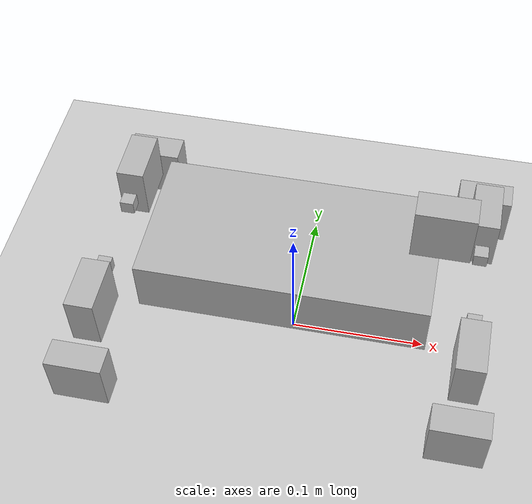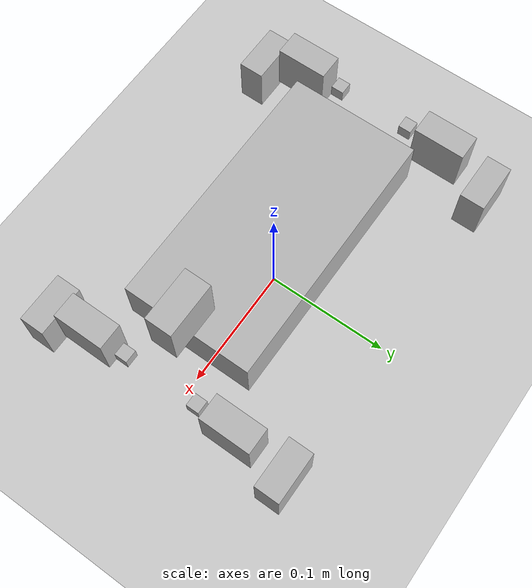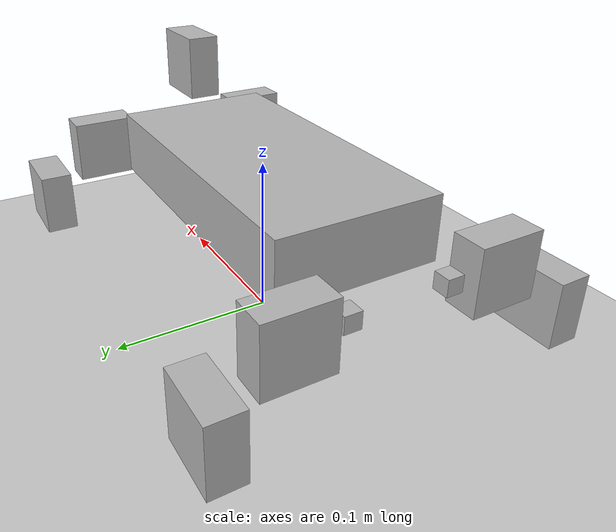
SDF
<?xml version="1.0"?>
<sdf version="1.5">
  <world name="default">
    <gui fullscreen='0'>
      <!-- KEYPUBLISHER SEE: https://github.com/osrf/car_demo/issues/25 -->
      <plugin name='keyboard' filename='libKeyboardGUIPlugin.so'/>
      <camera name='user_default'>
        <pose frame=''>0.602948 -0.001582 0.357965 -0 0.6 -3.141</pose>
        <view_controller>orbit</view_controller>
        <projection_type>perspective</projection_type>
      </camera>
    </gui>

    <include>
      <uri>model://ground_plane</uri>
    </include>

    <include>
      <uri>model://sun</uri>
    </include>

    <include>
      <uri>model://fourlegs</uri>
      <name>fourlegs</name>
      <pose>0 0 0.03 0 0 0</pose>
    </include>

  </world>
</sdf>

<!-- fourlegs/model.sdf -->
<sdf version='1.5'>
  <model name="robot">
    <static>false</static>
		<self_collide>false</self_collide>

    <link name="base_link">
      <pose>0 0 0.06 0 0 0</pose>
			<inertial>
			  <mass>2</mass>
				<inertia>
				  <ixx>50</ixx>
				  <ixy>0</ixy>
				  <ixz>0</ixz>
				  <iyy>50</iyy>
				  <iyz>0</iyz>
				  <izz>50</izz>
				</inertia>
			</inertial>
      <collision name="collision">
        <geometry>
          <box><size>0.2 0.1 0.04</size></box>
        </geometry>
      </collision>
      <visual name="visual">
        <geometry>
          <box><size>0.2 0.1 0.04</size></box>
        </geometry>
      </visual>
    </link>

    <link name="NECK">
      <pose>0.1 0 0.11 0 0 0</pose>
			<inertial>
			  <mass>0.2</mass>
				<inertia>
				  <ixx>2</ixx>
				  <ixy>0</ixy>
				  <ixz>0</ixz>
				  <iyy>2</iyy>
				  <iyz>0</iyz>
				  <izz>2</izz>
				</inertia>
			</inertial>
      <collision name="collision">
        <geometry>
          <box><size>0.04 0.02 0.04</size></box>
        </geometry>
      </collision>
      <visual name="visual">
        <geometry>
          <box><size>0.04 0.02 0.04</size></box>
        </geometry>
      </visual>
      <sensor type="camera" name="camera">
        <update_rate>20</update_rate>
        <visualize>true</visualize>
        <camera name="camera">
          <horizontal_fov>1.047</horizontal_fov>
          <image>
            <width>320</width>
            <height>240</height>
            <format>R8G8B8</format>
          </image>
          <clip>
            <near>0.1</near>
            <far>100</far>
          </clip>
          <!-- Noise is sampled independently per pixel on each frame.
               That pixel's noise value is added to each of its color
               channels, which at that point lie in the range [0,1]. -->
          <noise>
            <type>gaussian</type>
            <mean>0.0</mean>
            <stddev>0.007</stddev>
          </noise>
        </camera>
      </sensor>
    </link>

    <joint type="revolute" name="J_NECK">
      <pose>-0.02 0 -0.03 0 0 0</pose>
      <child>NECK</child>
      <parent>base_link</parent>
      <axis>
        <xyz>0 0 1</xyz>
      </axis>
    </joint>

    <link name="FR0">
      <pose>0.13 -0.03 0.05 0 0 0</pose>
			<inertial>
			  <mass>0.01</mass>
				<inertia>
				  <ixx>0.5</ixx>
				  <ixy>0</ixy>
				  <ixz>0</ixz>
				  <iyy>0.5</iyy>
				  <iyz>0</iyz>
				  <izz>0.5</izz>
				</inertia>
			</inertial>
      <collision name="collision">
        <geometry>
          <box><size>0.01 0.01 0.01</size></box>
        </geometry>
      </collision>
      <visual name="visual">
        <geometry>
          <box><size>0.01 0.01 0.01</size></box>
        </geometry>
      </visual>
    </link>

		<joint type="revolute" name="J_FR_B20">
			<pose>0 0 0 0 0 0</pose>
			<child>FR0</child>
			<parent>base_link</parent>
			<axis>
				<xyz>-1 0 0</xyz>
			</axis>
		</joint>

    <link name="FR1">
      <pose>0.13 -0.06 0.05 0 0 0</pose>
			<inertial>
			  <mass>0.2</mass>
				<inertia>
				  <ixx>2</ixx>
				  <ixy>0</ixy>
				  <ixz>0</ixz>
				  <iyy>2</iyy>
				  <iyz>0</iyz>
				  <izz>2</izz>
				</inertia>
			</inertial>
      <collision name="collision">
        <geometry>
          <box><size>0.02 0.04 0.04</size></box>
        </geometry>
      </collision>
      <visual name="visual">
        <geometry>
          <box><size>0.02 0.04 0.04</size></box>
        </geometry>
      </visual>
    </link>

		<joint type="revolute" name="J_FR_021">
			<pose>0 0 0 0 0 0</pose>
			<child>FR0</child>
			<parent>FR1</parent>
			<axis>
				<xyz>0 0 -1</xyz>
			</axis>
		</joint>

    <link name="FR2">
      <pose>0.13 -0.1 0.02 0 0 0</pose>
			<inertial>
			  <mass>0.2</mass>
				<inertia>
				  <ixx>2</ixx>
				  <ixy>0</ixy>
				  <ixz>0</ixz>
				  <iyy>2</iyy>
				  <iyz>0</iyz>
				  <izz>2</izz>
				</inertia>
			</inertial>
      <collision name="collision">
        <geometry>
          <box><size>0.04 0.02 0.04</size></box>
        </geometry>
      </collision>
      <visual name="visual">
        <geometry>
          <box><size>0.04 0.02 0.04</size></box>
        </geometry>
      </visual>
    </link>

		<joint type="revolute" name="J_FR_122">
			<pose>0 0 0.03 0 0 0</pose>
			<child>FR2</child>
			<parent>FR1</parent>
			<axis>
				<xyz>-1 0 0</xyz>
			</axis>
		</joint>

    <link name="FL0">
      <pose>0.13 0.03 0.05 0 0 0</pose>
			<inertial>
			  <mass>0.01</mass>
				<inertia>
				  <ixx>0.5</ixx>
				  <ixy>0</ixy>
				  <ixz>0</ixz>
				  <iyy>0.5</iyy>
				  <iyz>0</iyz>
				  <izz>0.5</izz>
				</inertia>
			</inertial>
      <collision name="collision">
        <geometry>
          <box><size>0.01 0.01 0.01</size></box>
        </geometry>
      </collision>
      <visual name="visual">
        <geometry>
          <box><size>0.01 0.01 0.01</size></box>
        </geometry>
      </visual>
    </link>

		<joint type="revolute" name="J_FL_B20">
			<pose>0 0 0 0 0 0</pose>
			<child>FL0</child>
			<parent>base_link</parent>
			<axis>
				<xyz>1 0 0</xyz>
			</axis>
		</joint>

    <link name="FL1">
      <pose>0.13 0.06 0.05 0 0 0</pose>
			<inertial>
			  <mass>0.2</mass>
				<inertia>
				  <ixx>2</ixx>
				  <ixy>0</ixy>
				  <ixz>0</ixz>
				  <iyy>2</iyy>
				  <iyz>0</iyz>
				  <izz>2</izz>
				</inertia>
			</inertial>
      <collision name="collision">
        <geometry>
          <box><size>0.02 0.04 0.04</size></box>
        </geometry>
      </collision>
      <visual name="visual">
        <geometry>
          <box><size>0.02 0.04 0.04</size></box>
        </geometry>
      </visual>
    </link>

		<joint type="revolute" name="J_FL_021">
			<pose>0 0 0 0 0 0</pose>
			<child>FL0</child>
			<parent>FL1</parent>
			<axis>
				<xyz>0 0 1</xyz>
			</axis>
		</joint>

    <link name="FL2">
      <pose>0.13 0.1 0.02 0 0 0</pose>
			<inertial>
			  <mass>0.2</mass>
				<inertia>
				  <ixx>2</ixx>
				  <ixy>0</ixy>
				  <ixz>0</ixz>
				  <iyy>2</iyy>
				  <iyz>0</iyz>
				  <izz>2</izz>
				</inertia>
			</inertial>
      <collision name="collision">
        <geometry>
          <box><size>0.04 0.02 0.04</size></box>
        </geometry>
      </collision>
      <visual name="visual">
        <geometry>
          <box><size>0.04 0.02 0.04</size></box>
        </geometry>
      </visual>
    </link>

		<joint type="revolute" name="J_FL_122">
			<pose>0 0 0.03 0 0 0</pose>
			<child>FL2</child>
			<parent>FL1</parent>
			<axis>
				<xyz>1 0 0</xyz>
			</axis>
		</joint>

    <link name="RR0">
      <pose>-0.13 -0.03 0.05 0 0 0</pose>
			<inertial>
			  <mass>0.01</mass>
				<inertia>
				  <ixx>0.5</ixx>
				  <ixy>0</ixy>
				  <ixz>0</ixz>
				  <iyy>0.5</iyy>
				  <iyz>0</iyz>
				  <izz>0.5</izz>
				</inertia>
			</inertial>
      <collision name="collision">
        <geometry>
          <box><size>0.01 0.01 0.01</size></box>
        </geometry>
      </collision>
      <visual name="visual">
        <geometry>
          <box><size>0.01 0.01 0.01</size></box>
        </geometry>
      </visual>
    </link>

		<joint type="revolute" name="J_RR_B20">
			<pose>0 0 0 0 0 0</pose>
			<child>RR0</child>
			<parent>base_link</parent>
			<axis>
				<xyz>-1 0 0</xyz>
			</axis>
		</joint>

    <link name="RR1">
      <pose>-0.13 -0.06 0.05 0 0 0</pose>
			<inertial>
			  <mass>0.2</mass>
				<inertia>
				  <ixx>2</ixx>
				  <ixy>0</ixy>
				  <ixz>0</ixz>
				  <iyy>2</iyy>
				  <iyz>0</iyz>
				  <izz>2</izz>
				</inertia>
			</inertial>
      <collision name="collision">
        <geometry>
          <box><size>0.02 0.04 0.04</size></box>
        </geometry>
      </collision>
      <visual name="visual">
        <geometry>
          <box><size>0.02 0.04 0.04</size></box>
        </geometry>
      </visual>
    </link>

		<joint type="revolute" name="J_RR_021">
			<pose>0 0 0 0 0 0</pose>
			<child>RR0</child>
			<parent>RR1</parent>
			<axis>
				<xyz>0 0 1</xyz>
			</axis>
		</joint>

    <link name="RR2">
      <pose>-0.13 -0.1 0.02 0 0 0</pose>
			<inertial>
			  <mass>0.01</mass>
			</inertial>
      <collision name="collision">
        <geometry>
          <box><size>0.04 0.02 0.04</size></box>
        </geometry>
      </collision>
      <visual name="visual">
        <geometry>
          <box><size>0.04 0.02 0.04</size></box>
        </geometry>
      </visual>
    </link>

		<joint type="revolute" name="J_RR_122">
			<pose>0 0 0.03 0 0 0</pose>
			<child>RR2</child>
			<parent>RR1</parent>
			<axis>
				<xyz>-1 0 0</xyz>
			</axis>
		</joint>

    <link name="RL0">
      <pose>-0.13 0.03 0.05 0 0 0</pose>
			<inertial>
			  <mass>0.01</mass>
				<inertia>
				  <ixx>0.5</ixx>
				  <ixy>0</ixy>
				  <ixz>0</ixz>
				  <iyy>0.5</iyy>
				  <iyz>0</iyz>
				  <izz>0.5</izz>
				</inertia>
			</inertial>
      <collision name="collision">
        <geometry>
          <box><size>0.01 0.01 0.01</size></box>
        </geometry>
      </collision>
      <visual name="visual">
        <geometry>
          <box><size>0.01 0.01 0.01</size></box>
        </geometry>
      </visual>
    </link>

		<joint type="revolute" name="J_RL_B20">
			<pose>0 0 0 0 0 0</pose>
			<child>RL0</child>
			<parent>base_link</parent>
			<axis>
				<xyz>1 0 0</xyz>
			</axis>
		</joint>

    <link name="RL1">
      <pose>-0.13 0.06 0.05 0 0 0</pose>
			<inertial>
			  <mass>0.2</mass>
				<inertia>
				  <ixx>2</ixx>
				  <ixy>0</ixy>
				  <ixz>0</ixz>
				  <iyy>2</iyy>
				  <iyz>0</iyz>
				  <izz>2</izz>
				</inertia>
			</inertial>
      <collision name="collision">
        <geometry>
          <box><size>0.02 0.04 0.04</size></box>
        </geometry>
      </collision>
      <visual name="visual">
        <geometry>
          <box><size>0.02 0.04 0.04</size></box>
        </geometry>
      </visual>
    </link>

		<joint type="revolute" name="J_RL_021">
			<pose>0 0 0 0 0 0</pose>
			<child>RL0</child>
			<parent>RL1</parent>
			<axis>
				<xyz>0 0 -1</xyz>
			</axis>
		</joint>

    <link name="RL2">
      <pose>-0.13 0.1 0.02 0 0 0</pose>
			<inertial>
			  <mass>0.2</mass>
				<inertia>
				  <ixx>2</ixx>
				  <ixy>0</ixy>
				  <ixz>0</ixz>
				  <iyy>2</iyy>
				  <iyz>0</iyz>
				  <izz>2</izz>
				</inertia>
			</inertial>
      <collision name="collision">
        <geometry>
          <box><size>0.04 0.02 0.04</size></box>
        </geometry>
      </collision>
      <visual name="visual">
        <geometry>
          <box><size>0.04 0.02 0.04</size></box>
        </geometry>
      </visual>
    </link>

		<joint type="revolute" name="J_RL_122">
			<pose>0 0 0.03 0 0 0</pose>
			<child>RL2</child>
			<parent>RL1</parent>
			<axis>
				<xyz>1 0 0</xyz>
			</axis>
		</joint>

  </model>
</sdf>
